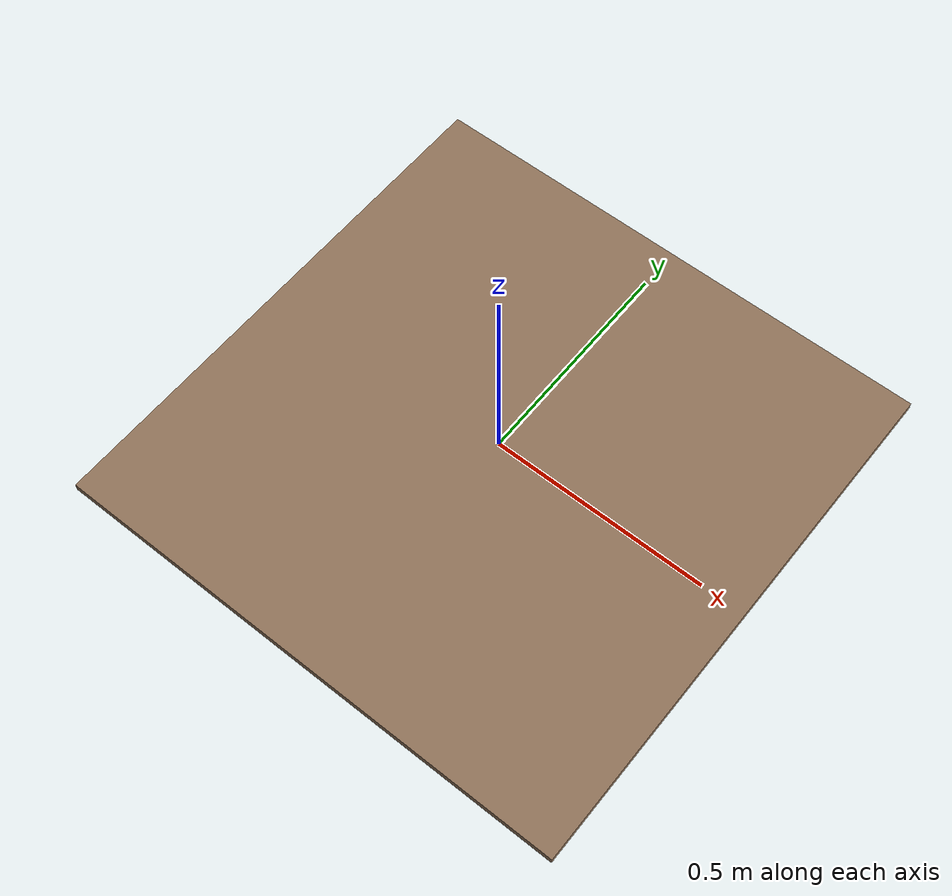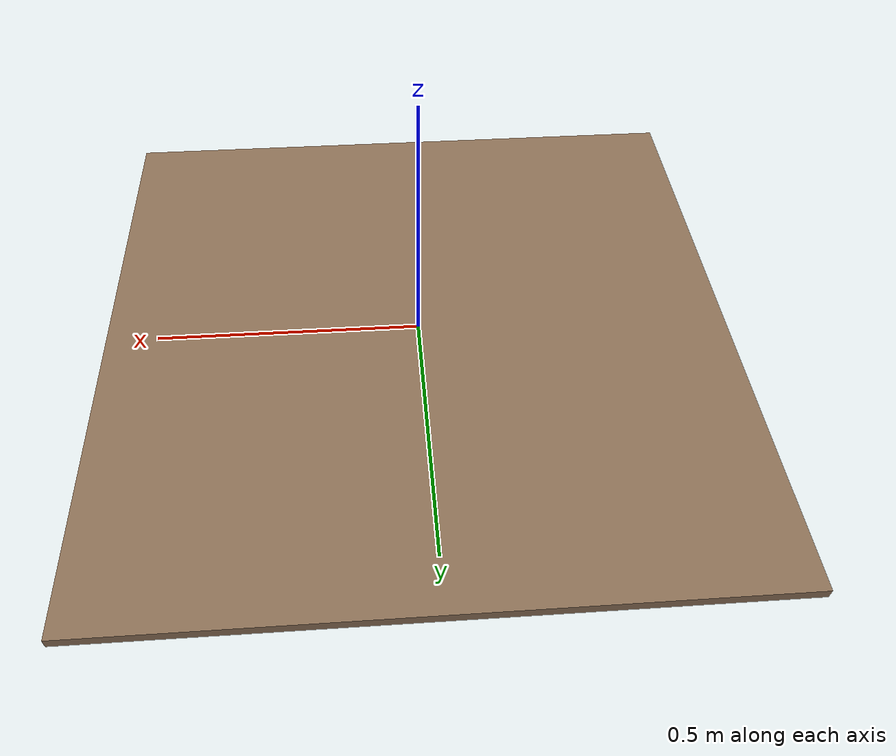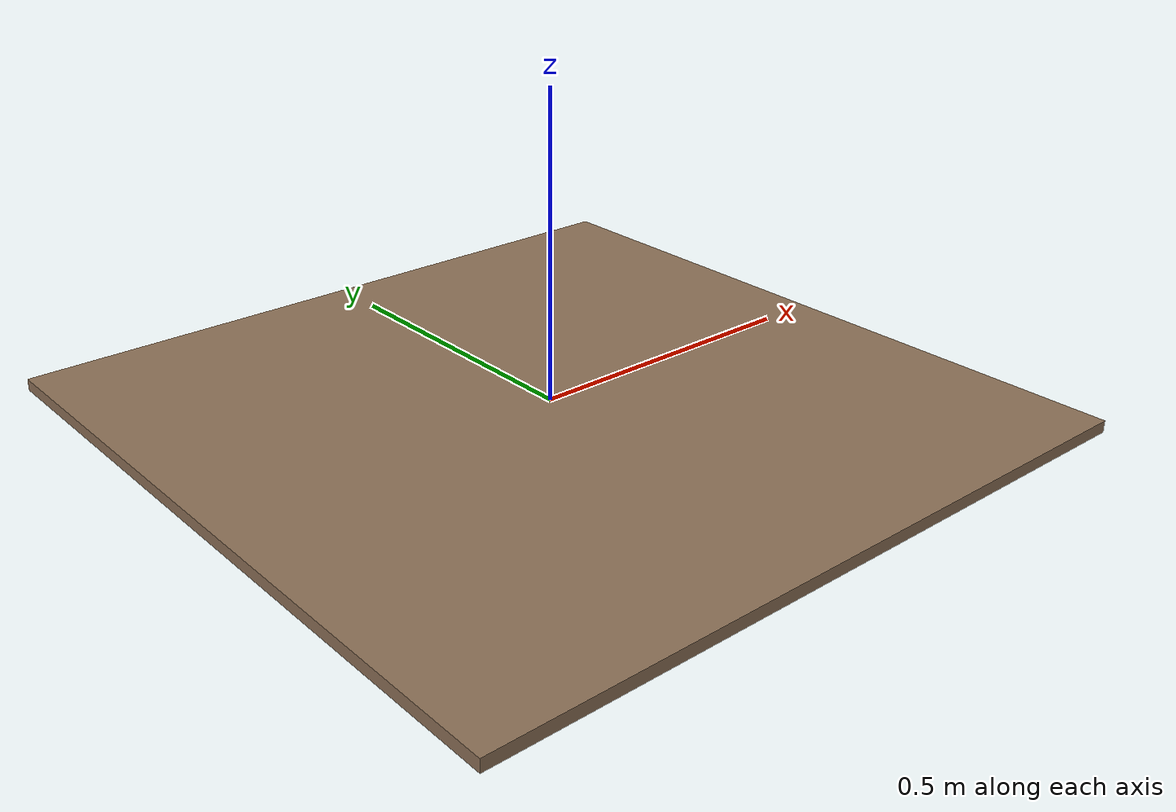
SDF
<?xml version="1.0" ?>
<sdf version="1.9">
  <world name="chessbot">

    <physics name="1ms" type="ignored">
      <max_step_size>0.001</max_step_size>
      <real_time_factor>1.0</real_time_factor>
    </physics>

    <plugin filename="gz-sim-physics-system" name="gz::sim::systems::Physics" />
    <plugin filename="gz-sim-user-commands-system" name="gz::sim::systems::UserCommands" />
    <plugin filename="gz-sim-scene-broadcaster-system" name="gz::sim::systems::SceneBroadcaster" />
    <plugin filename="gz-sim-contact-system" name="gz::sim::systems::Contact" />
    <plugin filename="gz-sim-sensors-system" name="gz::sim::systems::Sensors">
      <render_engine>ogre2</render_engine>
    </plugin>

    <gravity>0 0 -9.8</gravity>

    <scene>
      <ambient>0.3 0.3 0.3 1</ambient>
      <background>0.8 0.85 0.9 1</background>
      <grid>false</grid>
    </scene>

    <light type="directional" name="sun">
      <pose>0 0 3 0 0 0</pose>
      <cast_shadows>true</cast_shadows>
      <diffuse>0.6 0.6 0.6 1</diffuse>
      <specular>0.1 0.1 0.1 1</specular>
      <direction>-0.3 0.2 -0.9</direction>
    </light>

    <!-- A diffuse fill light from above the board keeps the overhead camera
         image even, the way the LED bar on the real mast will. -->
    <light type="point" name="board_fill">
      <pose>0.234 0 0.8 0 0 0</pose>
      <cast_shadows>false</cast_shadows>
      <diffuse>0.35 0.35 0.35 1</diffuse>
      <attenuation>
        <range>4</range>
        <constant>0.4</constant>
        <linear>0.2</linear>
      </attenuation>
    </light>

    <!-- Table surface: the robot's base plate and the board sit on this. -->
    <model name="table">
      <static>true</static>
      <link name="surface">
        <collision name="collision">
          <geometry>
            <box><size>1.2 1.2 0.02</size></box>
          </geometry>
          <surface>
            <friction>
              <ode><mu>0.9</mu><mu2>0.9</mu2></ode>
            </friction>
          </surface>
        </collision>
        <visual name="visual">
          <geometry>
            <box><size>1.2 1.2 0.02</size></box>
          </geometry>
          <material>
            <ambient>0.35 0.28 0.22 1</ambient>
            <diffuse>0.55 0.44 0.34 1</diffuse>
          </material>
        </visual>
        <pose>0 0 -0.01 0 0 0</pose>
      </link>
    </model>

  </world>
</sdf>
